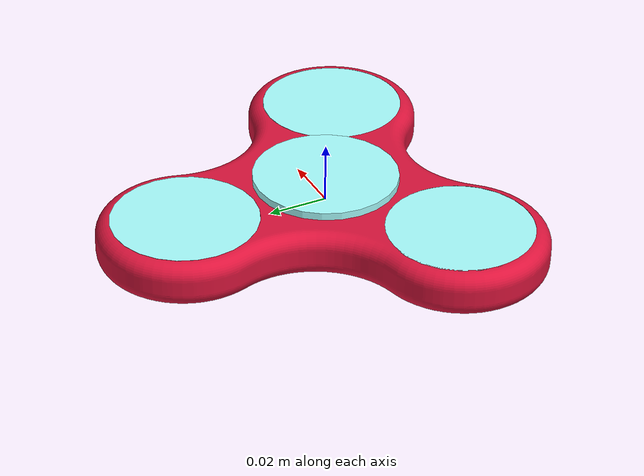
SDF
<?xml version="1.0" ?>
<sdf version="1.11">
  <model name="fidget_spinner">
    <link name="fidget_spinner">
      <pose>0 0 0 0 0 0</pose>
      <inertial auto="true" />
      <collision name="fidget_spinner_col">
        <pose>0 0 0 1.57 0 0</pose>
        <density>1000.0</density>
        <geometry>
          <mesh>
            <uri>meshes/Spinner_scaled.stl</uri>
          </mesh>
        </geometry>
      </collision>
      <visual name="fidget_spinner_vis">
        <pose>0 0 0 1.57 0 0</pose>
        <geometry>
          <mesh>
            <uri>meshes/Spinner_scaled.stl</uri>
          </mesh>
        </geometry>
        <material>
          <diffuse>0.8627 0.078 0.235 1.0</diffuse>
          <ambient>0.8627 0.078 0.235 1.0</ambient>
          <specular>0.8627 0.078 0.235 1.0</specular>
        </material>
      </visual>
      <collision name="cylinder_weight_col">
        <density>2710.0</density>
        <pose>0 0.05 0 0 0 0</pose>
        <geometry>
          <cylinder>
            <length>0.015</length>
            <radius>0.024</radius>
          </cylinder>
        </geometry>
      </collision>
      <visual name="cylinder_weight_col">
        <pose>0 0.05 0 0 0 0</pose>
        <geometry>
          <cylinder>
            <length>0.015</length>
            <radius>0.024</radius>
          </cylinder>
        </geometry>
        <material>
          <ambient>0.66 1 1 1</ambient>
          <diffuse>0.66 1 1 1</diffuse>
          <specular>0.66 1 1 1</specular>
          <pbr>
            <metal>
              <metalness>0.4</metalness>
            </metal>
          </pbr>
        </material>
      </visual>
      <collision name="cylinder_weight2_col">
        <density>2710.0</density>
        <pose>-0.0435 -0.025 0 0 0 0</pose>
        <geometry>
          <cylinder>
            <length>0.015</length>
            <radius>0.024</radius>
          </cylinder>
        </geometry>
      </collision>
      <visual name="cylinder_weight2">
        <pose>-0.0435 -0.025 0 0 0 0</pose>
        <geometry>
          <cylinder>
            <length>0.015</length>
            <radius>0.024</radius>
          </cylinder>
        </geometry>
        <material>
          <ambient>0.66 1 1 1</ambient>
          <diffuse>0.66 1 1 1</diffuse>
          <specular>0.66 1 1 1</specular>
          <pbr>
            <metal>
              <metalness>0.4</metalness>
            </metal>
          </pbr>
        </material>
      </visual>
      <collision name="cylinder_weight3_col">
        <density>2710.0</density>
        <pose>0.0435 -0.025 0 0 0 0</pose>
        <geometry>
          <cylinder>
            <length>0.015</length>
            <radius>0.024</radius>
          </cylinder>
        </geometry>
      </collision>
      <visual name="cylinder_weight3">
        <pose>0.0435 -0.025 0 0 0 0</pose>
        <geometry>
          <cylinder>
            <length>0.015</length>
            <radius>0.024</radius>
          </cylinder>
        </geometry>
        <material>
          <ambient>0.66 1 1 1</ambient>
          <diffuse>0.66 1 1 1</diffuse>
          <specular>0.66 1 1 1</specular>
          <pbr>
            <metal>
              <metalness>0.4</metalness>
            </metal>
          </pbr>
        </material>
      </visual>
    </link>
    <model name="central_cylinder_pivot">
      <static>true</static>
      <link name="cylinder_pivot">
        <collision name="cylinder_pivot_col">
          <geometry>
            <cylinder>
              <length>0.02</length>
              <radius>0.024</radius>
            </cylinder>
          </geometry>
        </collision>
        <visual name="cylinder_pivot_vis">
          <geometry>
            <cylinder>
              <length>0.02</length>
              <radius>0.024</radius>
            </cylinder>
          </geometry>
          <material>
            <ambient>0.66 1 1 1</ambient>
            <diffuse>0.66 1 1 1</diffuse>
            <specular>0.66 1 1 1</specular>
            <pbr>
              <metal>
                <metalness>0.4</metalness>
              </metal>
            </pbr>
          </material>
        </visual>
      </link>
    </model>

    <joint name="pivot" type="revolute">
      <pose>0 0 0 0 0 0</pose>
      <parent>fidget_spinner</parent>
      <child>central_cylinder_pivot::cylinder_pivot</child>
      <axis>
        <xyz>0 0 1.0</xyz>
      </axis>
    </joint>
  </model>
</sdf>
